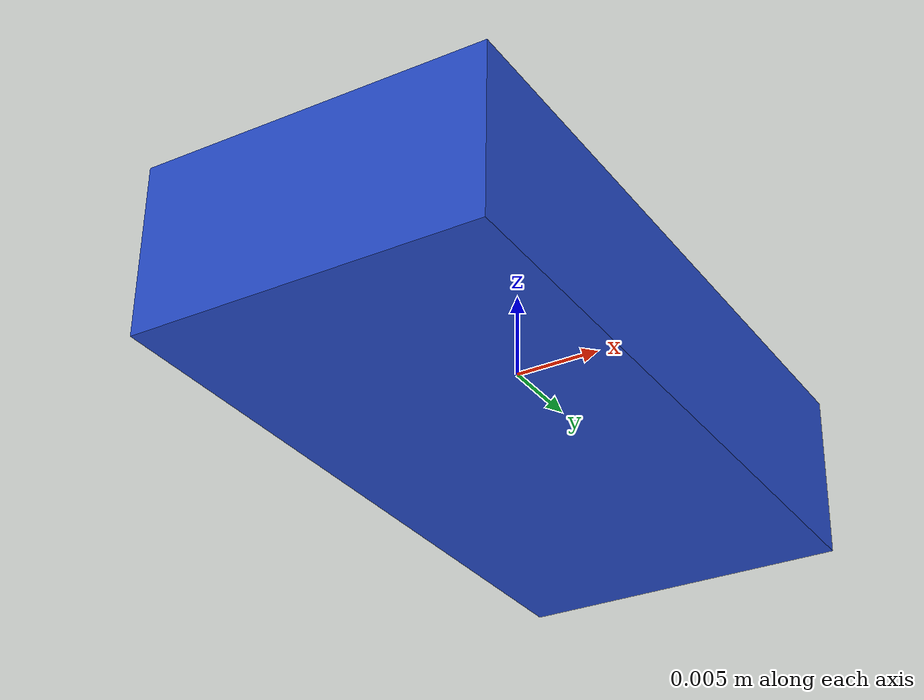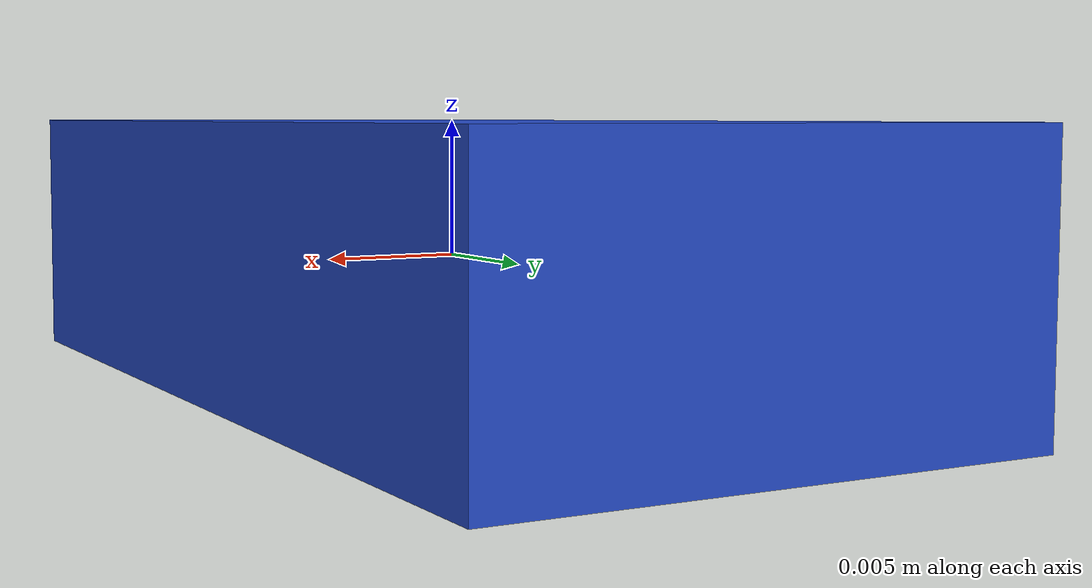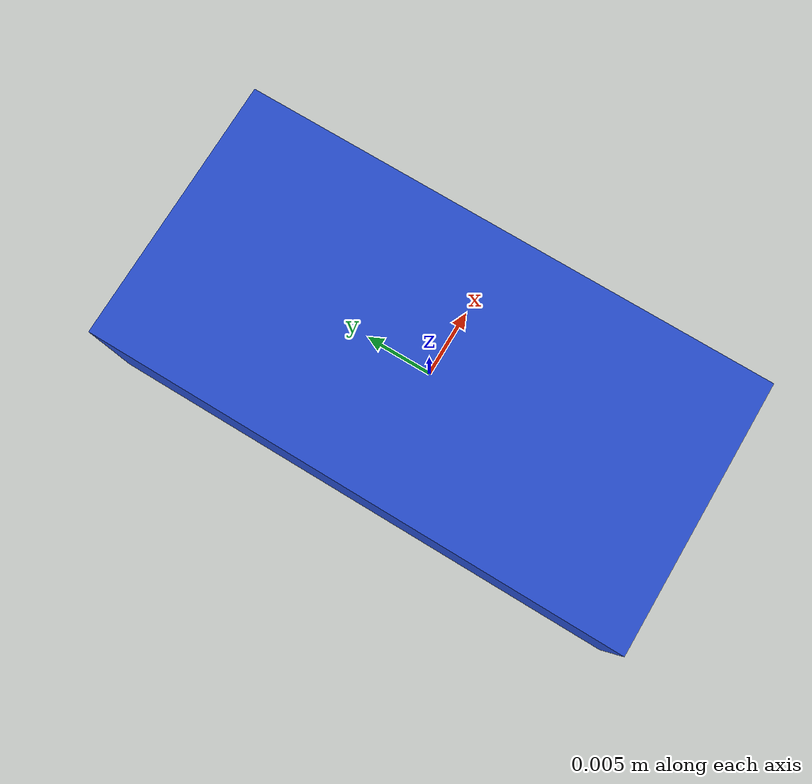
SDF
<?xml version="1.0" ?>
<sdf version="1.6">
  <model name="gps_imu">
    <link name="gps_imu_link">

      <inertial>
        <mass>0.05</mass>
      </inertial>
      <visual name="visual">
        <geometry>
          <box>
            <size>0.02 0.04 0.01</size>
          </box>
        </geometry>
        <material>
          <lighting>1</lighting>
          <script>
            <uri>file://media/materials/scripts/gazebo.material</uri>
            <name>Gazebo/Blue</name>
          </script>
          <shader type='vertex'>
            <normal_map>__default__</normal_map>
          </shader>
        </material>
      </visual>
      <collision name="collision">
        <geometry>
          <box>
            <size>0.02 0.04 0.01</size>
          </box>
        </geometry>
      </collision>

      <sensor name='gazebo_gps_sensor' type='gps'>
        <plugin name="rock_gps_plugin" filename="libRockGpsPlugin.so">
          <frameId> gps0_link </frameId>
          <topicName> /gps/fix_unadjusted </topicName>
        </plugin>
        <always_on> 1 </always_on>
        <update_rate> 1 </update_rate>

        <gps>
          <position_sensing>
            <horizontal>
              <noise type="gaussian">
                <stddev> 1.5 </stddev>
              </noise>
            </horizontal>
          </position_sensing>
        </gps>
      </sensor>

    </link>

    <plugin name="custom_imu_sim" filename="libhector_gazebo_ros_imu.so">
        <alwaysOn>1</alwaysOn>
        <updateRate>50.0</updateRate>
        <bodyName>gps_imu_link</bodyName>
        <robotNamespace> /rover </robotNamespace>
        <topicName>imu</topicName>
        <frameId> base_imu_link </frameId>

        <accelOffset>0.0 0.0 0.0</accelOffset>
        <accelDrift>0 0 0</accelDrift>
        <accelDriftFrequency>0 0 0</accelDriftFrequency>
        <accelGaussianNoise>0 0 0</accelGaussianNoise>
        <xyzOffset> 0 0 0 </xyzOffset>
        <rpyOffset> 0 0 0 </rpyOffset>

        <rateOffset>0.0 0.0 0.0</rateOffset>
        <rateDrift>0 0 0</rateDrift>
        <rateDriftFrequency>0 0 0</rateDriftFrequency>
        <rateGaussianNoise>0.0 0.0 0.0</rateGaussianNoise>

        <yawOffset>0.0</yawOffset>
        <yawDrift>0.0</yawDrift>
        <yawDriftFrequency>0.0</yawDriftFrequency>
        <yawGaussianNoise>0.0</yawGaussianNoise>
    </plugin>

    <plugin name="custom_magnetometer_sim" filename="libhector_gazebo_ros_magnetic.so">
        <alwaysOn>1</alwaysOn>
        <updateRate>50.0</updateRate>
        <bodyName>gps_imu_link</bodyName>
        <topicName>/rover/magnetometer</topicName>
        <frameId> base_imu_link </frameId>
        <magnitude> 10 </magnitude>
        <offset>0 0 0</offset>
        <drift>0 0 0</drift>
        <gaussianNoise>0 0 0</gaussianNoise>
        <referenceHeading> 0 </referenceHeading>
        <declination> 0.226893 </declination>
    </plugin>
      <plugin name="exact_odom_plugin" filename="libExactOdomPlugin.so">
        <alwaysOn>1</alwaysOn>
        <bodyName>gps_imu_link</bodyName>
        <topicName>/odometry/perfect</topicName>
        <frameId> base_imu_link </frameId>
      </plugin>
  </model>
</sdf>
